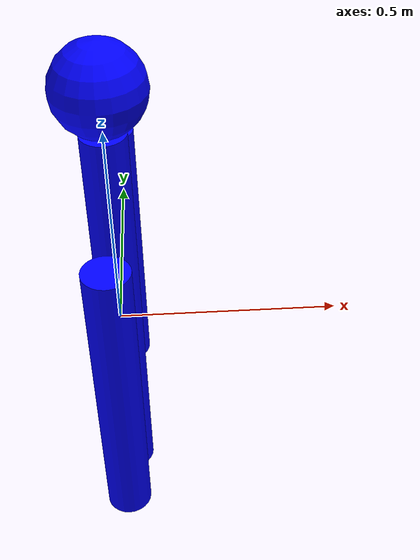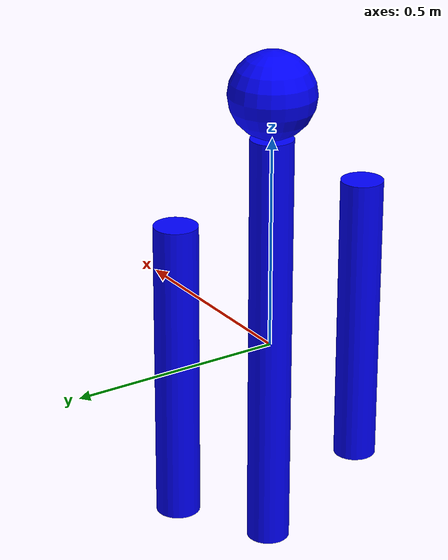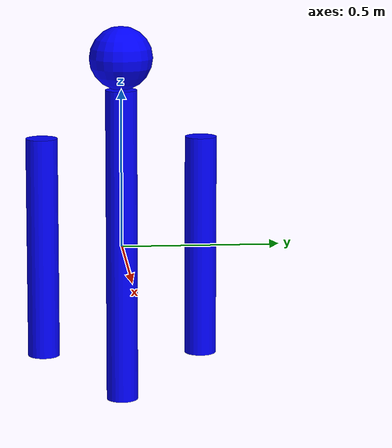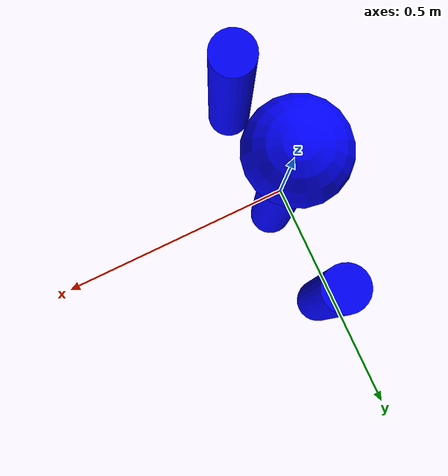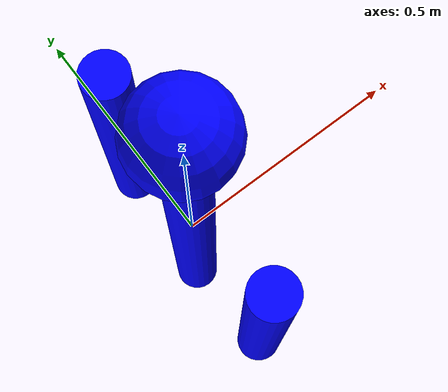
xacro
<?xml version="1.0"?>
<robot name="robotic_bird" xmlns:xacro="http://www.ros.org/wiki/xacro">
  <!-- ================= BODY ================= -->
  <link name="body_link">
    <visual>
      <geometry>
        <cylinder radius="0.05" length="1"/>
      </geometry>
      <material name="blue">
        <color rgba="0 0 1 1"/>
      </material>
    </visual>
    <collision>
      <geometry>
        <cylinder radius="0.05" length="1"/>
      </geometry>
    </collision>
    <inertial>
      <mass value="5.0"/>
      <inertia ixx="0.05" iyy="0.05" izz="0.05" ixy="0" ixz="0" iyz="0"/>
    </inertial>
  </link>

  <!-- ================= HEAD ================= -->
  <link name="head_link">
    <visual>
      <geometry>
        <sphere radius="0.1"/>
      </geometry>
      <material name="blue">
        <color rgba="0 0 1 1"/>
      </material>
    </visual>
    <collision>
      <geometry>
        <sphere radius="0.1"/>
      </geometry>
    </collision>
    <inertial>
      <mass value="0.5"/>
      <inertia ixx="0.001" iyy="0.001" izz="0.001" ixy="0" ixz="0" iyz="0"/>
    </inertial>
  </link>

  <joint name="head_joint" type="fixed">
    <parent link="body_link"/>
    <child link="head_link"/>
    <origin xyz="0 0 0.6" rpy="0 0 0"/>
  </joint>

  <!-- ================= LEFT WING ================= -->
  <link name="left_wing_link">
    <visual>
      <!-- Rotate cylinder along Y-axis (wing span) -->
      <origin xyz="0 0 0" rpy="0 0 1.5708"/>
      <geometry>
        <cylinder radius="0.05" length="0.7"/>
      </geometry>
      <material name="blue">
        <color rgba="0 0 1 1"/>
      </material>
    </visual>
    <collision>
      <origin xyz="0 0 0" rpy="0 0 1.5708"/>
      <geometry>
        <cylinder radius="0.05" length="0.7"/>
      </geometry>
    </collision>
    <inertial>
      <mass value="0.3"/>
      <inertia ixx="0.0005" iyy="0.0005" izz="0.0001" ixy="0" ixz="0" iyz="0"/>
    </inertial>
  </link>

  <joint name="left_wing_joint" type="fixed">
    <parent link="body_link"/>
    <child link="left_wing_link"/>
    <origin xyz="0 0.25 0" rpy="0 0 0"/>
  </joint>

  <!-- ================= RIGHT WING ================= -->
  <link name="right_wing_link">
    <visual>
      <!-- Rotate cylinder along Y-axis (wing span) -->
      <origin xyz="0 0 0" rpy="0 0 1.5708"/>
      <geometry>
        <cylinder radius="0.05" length="0.7"/>
      </geometry>
      <material name="blue">
        <color rgba="0 0 1 1"/>
      </material>
    </visual>
    <collision>
      <origin xyz="0 0 0" rpy="0 0 1.5708"/>
      <geometry>
        <cylinder radius="0.05" length="0.7"/>
      </geometry>
    </collision>
    <inertial>
      <mass value="0.3"/>
      <inertia ixx="0.0005" iyy="0.0005" izz="0.0001" ixy="0" ixz="0" iyz="0"/>
    </inertial>
  </link>

  <joint name="right_wing_joint" type="fixed">
    <parent link="body_link"/>
    <child link="right_wing_link"/>
    <origin xyz="0 -0.25 0" rpy="0 0 0"/>
  </joint>

  <!-- Gazebo-specific properties -->
  <gazebo reference="body_link">
    <gravity>true</gravity>
    <self_collide>false</self_collide>
    <kinematic>false</kinematic>
    <mu1>0.2</mu1>
    <mu2>0.2</mu2>
    <kp>100000</kp> <!-- contact stiffness -->
    <kd>1.0</kd>    <!-- contact damping -->
    <allow_free_motion>true</allow_free_motion>
  </gazebo>

  <!-- Flap plugin -->
  <gazebo>
    <plugin name="flap_plugin" filename="libflap_plugin.so">
      <link_name>body_link</link_name>
      <update_rate>100</update_rate>
    </plugin>
  </gazebo>
</robot>
